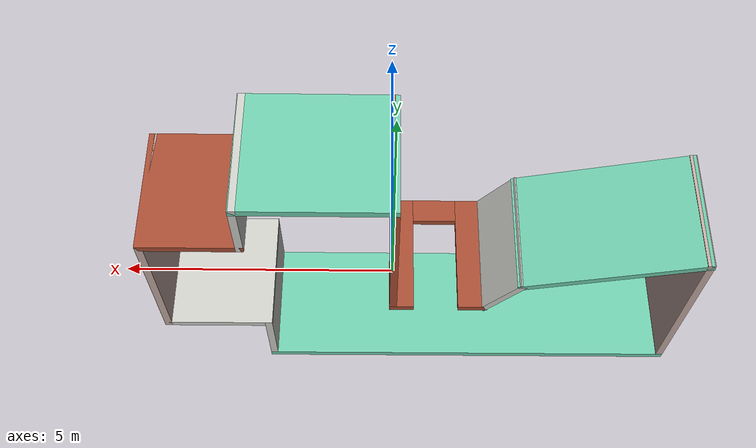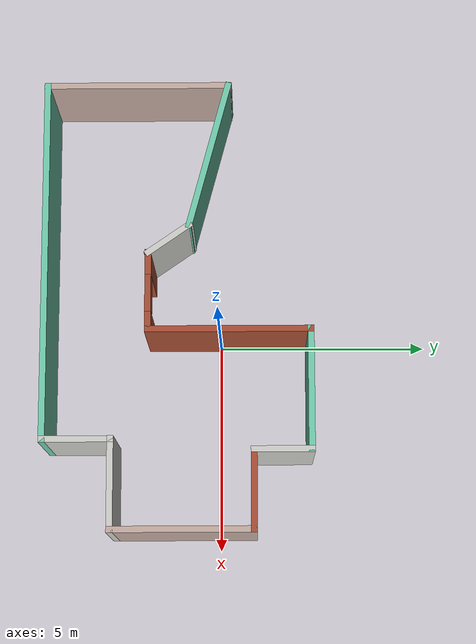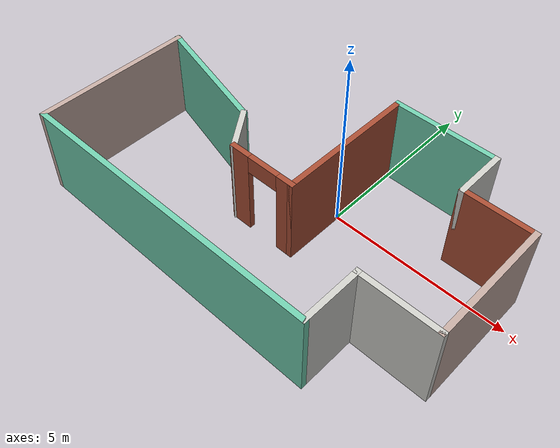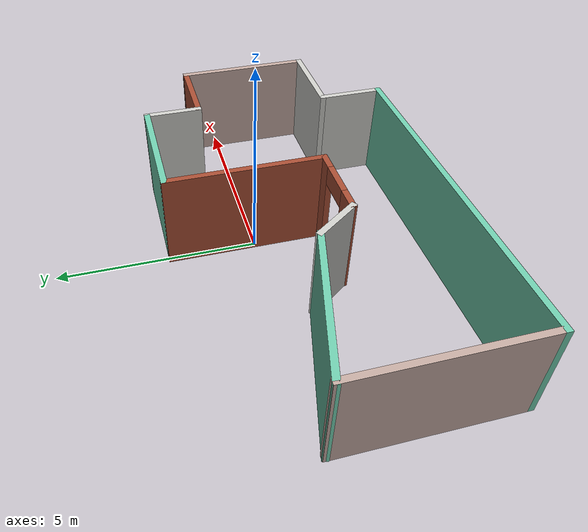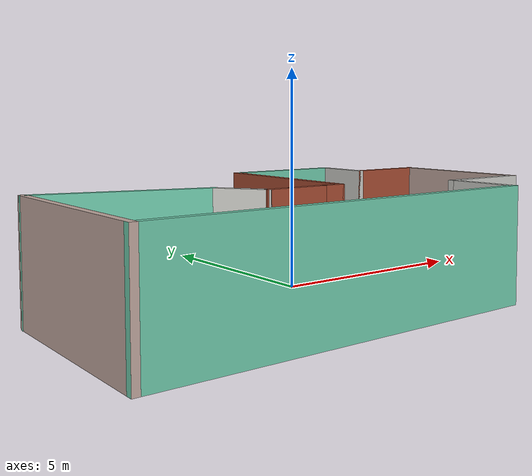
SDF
<?xml version='1.0'?>
<sdf version='1.6'>
  <model name='building'>
    <pose frame=''>-0.698428 -1 0 0 -0 0</pose>
    <link name='Wall_0'>
      <pose frame=''>-0.266572 -0.7 0 0 -0 0</pose>
      <visual name='Wall_0_Visual_0'>
        <pose frame=''>-0.698749 0 1.25 0 -0 0</pose>
        <geometry>
          <box>
            <size>0.602501 0.15 2.5</size>
          </box>
        </geometry>
        <material>
          <script>
            <uri>file://media/materials/scripts/gazebo.material</uri>
            <name>Gazebo/Bricks</name>
          </script>
          <ambient>1 1 1 1</ambient>
        </material>
        <meta>
          <layer>0</layer>
        </meta>
      </visual>
      <collision name='Wall_0_Collision_0'>
        <geometry>
          <box>
            <size>0.602501 0.15 2.5</size>
          </box>
        </geometry>
        <pose frame=''>-0.698749 0 1.25 0 -0 0</pose>
      </collision>
      <visual name='Wall_0_Visual_1'>
        <pose frame=''>0.751251 0 1.25 0 -0 0</pose>
        <geometry>
          <box>
            <size>0.497499 0.15 2.5</size>
          </box>
        </geometry>
        <material>
          <script>
            <uri>file://media/materials/scripts/gazebo.material</uri>
            <name>Gazebo/Bricks</name>
          </script>
          <ambient>1 1 1 1</ambient>
        </material>
        <meta>
          <layer>0</layer>
        </meta>
      </visual>
      <collision name='Wall_0_Collision_1'>
        <geometry>
          <box>
            <size>0.497499 0.15 2.5</size>
          </box>
        </geometry>
        <pose frame=''>0.751251 0 1.25 0 -0 0</pose>
      </collision>
      <visual name='Wall_0_Visual_2'>
        <pose frame=''>0.052501 0 2.25 0 -0 0</pose>
        <geometry>
          <box>
            <size>0.9 0.15 0.5</size>
          </box>
        </geometry>
        <material>
          <script>
            <uri>file://media/materials/scripts/gazebo.material</uri>
            <name>Gazebo/Bricks</name>
          </script>
          <ambient>1 1 1 1</ambient>
        </material>
        <meta>
          <layer>0</layer>
        </meta>
      </visual>
      <collision name='Wall_0_Collision_2'>
        <geometry>
          <box>
            <size>0.9 0.15 0.5</size>
          </box>
        </geometry>
        <pose frame=''>0.052501 0 2.25 0 -0 0</pose>
      </collision>
    </link>
    <link name='Wall_1'>
      <collision name='Wall_1_Collision'>
        <geometry>
          <box>
            <size>4 0.15 2.5</size>
          </box>
        </geometry>
        <pose frame=''>0 0 1.25 0 -0 0</pose>
      </collision>
      <visual name='Wall_1_Visual'>
        <pose frame=''>0 0 1.25 0 -0 0</pose>
        <geometry>
          <box>
            <size>4 0.15 2.5</size>
          </box>
        </geometry>
        <material>
          <script>
            <uri>file://media/materials/scripts/gazebo.material</uri>
            <name>Gazebo/Bricks</name>
          </script>
          <ambient>0.760784 0.662745 0.627451 1</ambient>
        </material>
        <meta>
          <layer>0</layer>
        </meta>
      </visual>
      <pose frame=''>0.658428 1.225 0 0 -0 1.5708</pose>
    </link>
    <link name='Wall_10'>
      <collision name='Wall_10_Collision'>
        <geometry>
          <box>
            <size>3.75 0.15 2.5</size>
          </box>
        </geometry>
        <pose frame=''>0 0 1.25 0 -0 0</pose>
      </collision>
      <visual name='Wall_10_Visual'>
        <pose frame=''>0 0 1.25 0 -0 0</pose>
        <geometry>
          <box>
            <size>3.75 0.15 2.5</size>
          </box>
        </geometry>
        <material>
          <script>
            <uri>file://media/materials/scripts/gazebo.material</uri>
            <name>Gazebo/Grey</name>
          </script>
          <ambient>0.435294 0.796078 0.67451 1</ambient>
        </material>
        <meta>
          <layer>0</layer>
        </meta>
      </visual>
      <pose frame=''>-3.60291 0.734126 0 0 0 -0.261799</pose>
    </link>
    <link name='Wall_11'>
      <collision name='Wall_11_Collision'>
        <geometry>
          <box>
            <size>1.32898 0.15 2.5</size>
          </box>
        </geometry>
        <pose frame=''>0 0 1.25 0 -0 0</pose>
      </collision>
      <visual name='Wall_11_Visual'>
        <pose frame=''>0 0 1.25 0 -0 0</pose>
        <geometry>
          <box>
            <size>1.32898 0.15 2.5</size>
          </box>
        </geometry>
        <material>
          <script>
            <uri>file://media/materials/scripts/gazebo.material</uri>
            <name>Gazebo/CeilingTiled</name>
          </script>
          <ambient>1 1 1 1</ambient>
        </material>
        <meta>
          <layer>0</layer>
        </meta>
      </visual>
      <pose frame=''>-1.52791 -0.215874 0 0 0 -0.96362</pose>
    </link>
    <link name='Wall_2'>
      <collision name='Wall_2_Collision'>
        <geometry>
          <box>
            <size>3 0.15 2.5</size>
          </box>
        </geometry>
        <pose frame=''>0 0 1.25 0 -0 0</pose>
      </collision>
      <visual name='Wall_2_Visual'>
        <pose frame=''>0 0 1.25 0 -0 0</pose>
        <geometry>
          <box>
            <size>3 0.15 2.5</size>
          </box>
        </geometry>
        <material>
          <script>
            <uri>file://media/materials/scripts/gazebo.material</uri>
            <name>Gazebo/Grey</name>
          </script>
          <ambient>0.435294 0.796078 0.67451 1</ambient>
        </material>
        <meta>
          <layer>0</layer>
        </meta>
      </visual>
      <pose frame=''>2.08343 3.15 0 0 -0 0</pose>
    </link>
    <link name='Wall_3'>
      <collision name='Wall_3_Collision'>
        <geometry>
          <box>
            <size>1.5 0.15 2.5</size>
          </box>
        </geometry>
        <pose frame=''>0 0 1.25 0 -0 0</pose>
      </collision>
      <visual name='Wall_3_Visual'>
        <pose frame=''>0 0 1.25 0 -0 0</pose>
        <geometry>
          <box>
            <size>1.5 0.15 2.5</size>
          </box>
        </geometry>
        <material>
          <script>
            <uri>file://media/materials/scripts/gazebo.material</uri>
            <name>Gazebo/CeilingTiled</name>
          </script>
          <ambient>1 1 1 1</ambient>
        </material>
        <meta>
          <layer>0</layer>
        </meta>
      </visual>
      <pose frame=''>3.50843 2.475 0 0 0 -1.5708</pose>
    </link>
    <link name='Wall_4'>
      <collision name='Wall_4_Collision'>
        <geometry>
          <box>
            <size>2 0.15 2.5</size>
          </box>
        </geometry>
        <pose frame=''>0 0 1.25 0 -0 0</pose>
      </collision>
      <visual name='Wall_4_Visual'>
        <pose frame=''>0 0 1.25 0 -0 0</pose>
        <geometry>
          <box>
            <size>2 0.15 2.5</size>
          </box>
        </geometry>
        <material>
          <script>
            <uri>file://media/materials/scripts/gazebo.material</uri>
            <name>Gazebo/Bricks</name>
          </script>
          <ambient>1 1 1 1</ambient>
        </material>
        <meta>
          <layer>0</layer>
        </meta>
      </visual>
      <pose frame=''>4.43343 1.8 0 0 -0 0</pose>
    </link>
    <link name='Wall_5'>
      <collision name='Wall_5_Collision'>
        <geometry>
          <box>
            <size>3.5 0.15 2.5</size>
          </box>
        </geometry>
        <pose frame=''>0 0 1.25 0 -0 0</pose>
      </collision>
      <visual name='Wall_5_Visual'>
        <pose frame=''>0 0 1.25 0 -0 0</pose>
        <geometry>
          <box>
            <size>3.5 0.15 2.5</size>
          </box>
        </geometry>
        <material>
          <script>
            <uri>file://media/materials/scripts/gazebo.material</uri>
            <name>Gazebo/Grey</name>
          </script>
          <ambient>0.760784 0.662745 0.627451 1</ambient>
        </material>
        <meta>
          <layer>0</layer>
        </meta>
      </visual>
      <pose frame=''>5.35843 0.125 0 0 0 -1.5708</pose>
    </link>
    <link name='Wall_6'>
      <collision name='Wall_6_Collision'>
        <geometry>
          <box>
            <size>2.25 0.15 2.5</size>
          </box>
        </geometry>
        <pose frame=''>0 0 1.25 0 -0 0</pose>
      </collision>
      <visual name='Wall_6_Visual'>
        <pose frame=''>0 0 1.25 0 -0 0</pose>
        <geometry>
          <box>
            <size>2.25 0.15 2.5</size>
          </box>
        </geometry>
        <material>
          <script>
            <uri>file://media/materials/scripts/gazebo.material</uri>
            <name>Gazebo/CeilingTiled</name>
          </script>
          <ambient>1 1 1 1</ambient>
        </material>
        <meta>
          <layer>0</layer>
        </meta>
      </visual>
      <pose frame=''>4.30843 -1.55 0 0 -0 3.14159</pose>
    </link>
    <link name='Wall_7'>
      <collision name='Wall_7_Collision'>
        <geometry>
          <box>
            <size>1.75 0.15 2.5</size>
          </box>
        </geometry>
        <pose frame=''>0 0 1.25 0 -0 0</pose>
      </collision>
      <visual name='Wall_7_Visual'>
        <pose frame=''>0 0 1.25 0 -0 0</pose>
        <geometry>
          <box>
            <size>1.75 0.15 2.5</size>
          </box>
        </geometry>
        <material>
          <script>
            <uri>file://media/materials/scripts/gazebo.material</uri>
            <name>Gazebo/CeilingTiled</name>
          </script>
          <ambient>1 1 1 1</ambient>
        </material>
        <meta>
          <layer>0</layer>
        </meta>
      </visual>
      <pose frame=''>3.25843 -2.35 0 0 0 -1.5708</pose>
    </link>
    <link name='Wall_8'>
      <collision name='Wall_8_Collision'>
        <geometry>
          <box>
            <size>8.75 0.15 2.5</size>
          </box>
        </geometry>
        <pose frame=''>0 0 1.25 0 -0 0</pose>
      </collision>
      <visual name='Wall_8_Visual'>
        <pose frame=''>0 0 1.25 0 -0 0</pose>
        <geometry>
          <box>
            <size>8.75 0.15 2.5</size>
          </box>
        </geometry>
        <material>
          <script>
            <uri>file://media/materials/scripts/gazebo.material</uri>
            <name>Gazebo/Grey</name>
          </script>
          <ambient>0.435294 0.796078 0.67451 1</ambient>
        </material>
        <meta>
          <layer>0</layer>
        </meta>
      </visual>
      <pose frame=''>-1.04157 -3.15 0 0 -0 3.14159</pose>
    </link>
    <link name='Wall_9'>
      <collision name='Wall_9_Collision'>
        <geometry>
          <box>
            <size>4.5 0.15 2.5</size>
          </box>
        </geometry>
        <pose frame=''>0 0 1.25 0 -0 0</pose>
      </collision>
      <visual name='Wall_9_Visual'>
        <pose frame=''>0 0 1.25 0 -0 0</pose>
        <geometry>
          <box>
            <size>4.5 0.15 2.5</size>
          </box>
        </geometry>
        <material>
          <script>
            <uri>file://media/materials/scripts/gazebo.material</uri>
            <name>Gazebo/Grey</name>
          </script>
          <ambient>0.760784 0.662745 0.627451 1</ambient>
        </material>
        <meta>
          <layer>0</layer>
        </meta>
      </visual>
      <pose frame=''>-5.34157 -0.975 0 0 -0 1.5708</pose>
    </link>
    <static>1</static>
  </model>
</sdf>
